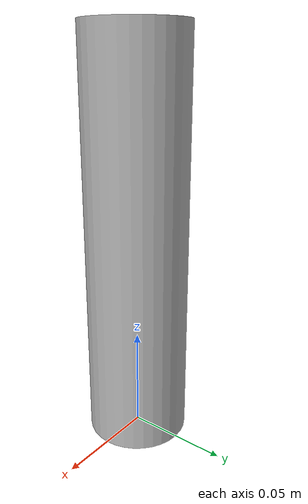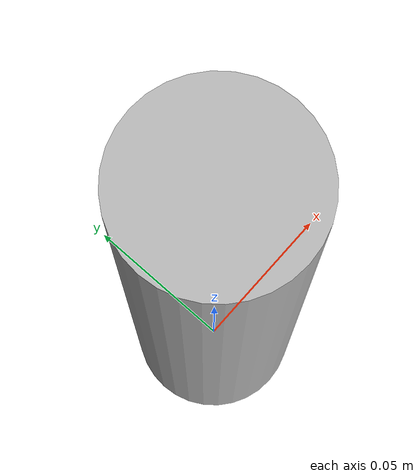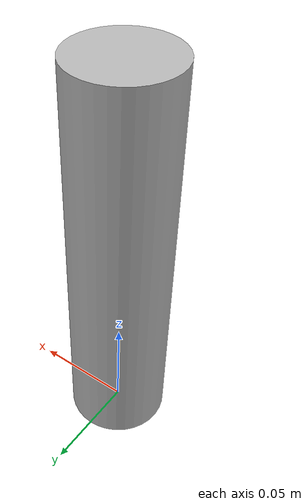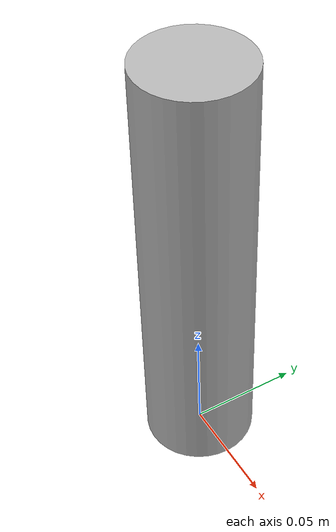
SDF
<?xml version="1.0"?>
<sdf version="1.5">
    <model name="bottle_hoegaarden_blue">
        <static>true</static>
        <link name="link">
            <collision name="collision">
                <geometry>
                    <cylinder>
                        <radius>0.025</radius>
                        <length>0.2</length>
                    </cylinder>
                </geometry>
            </collision>
            <visual name="visual">
                <geometry>
                    <mesh>
                        <uri>model://bottles/hoegaarden_blue/meshes/bottle.dae</uri>
                        <scale>1 1 1</scale>
                    </mesh>
                </geometry>
                <material>
                    <emissive>0.2 0.2 0.2 1</emissive>
                </material>
            </visual>
        </link>
    </model>
</sdf>
